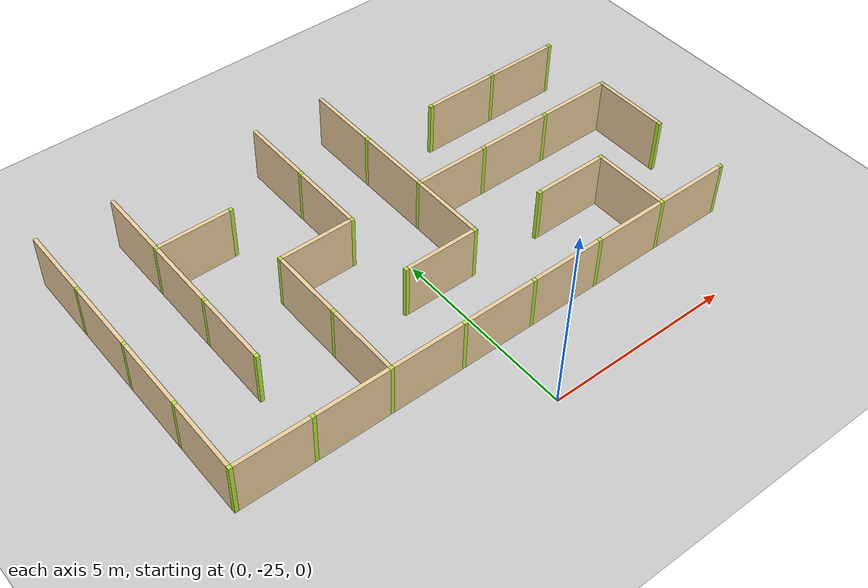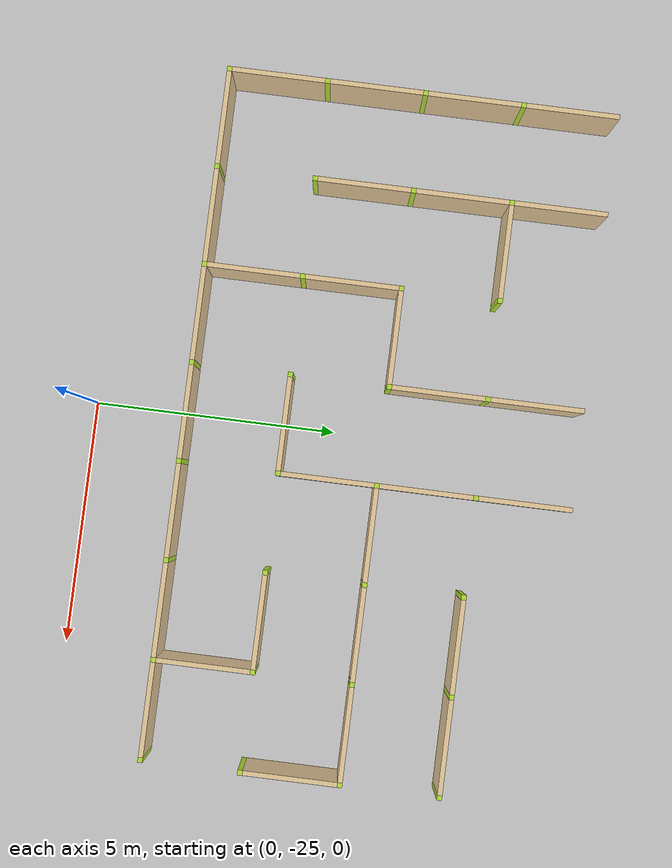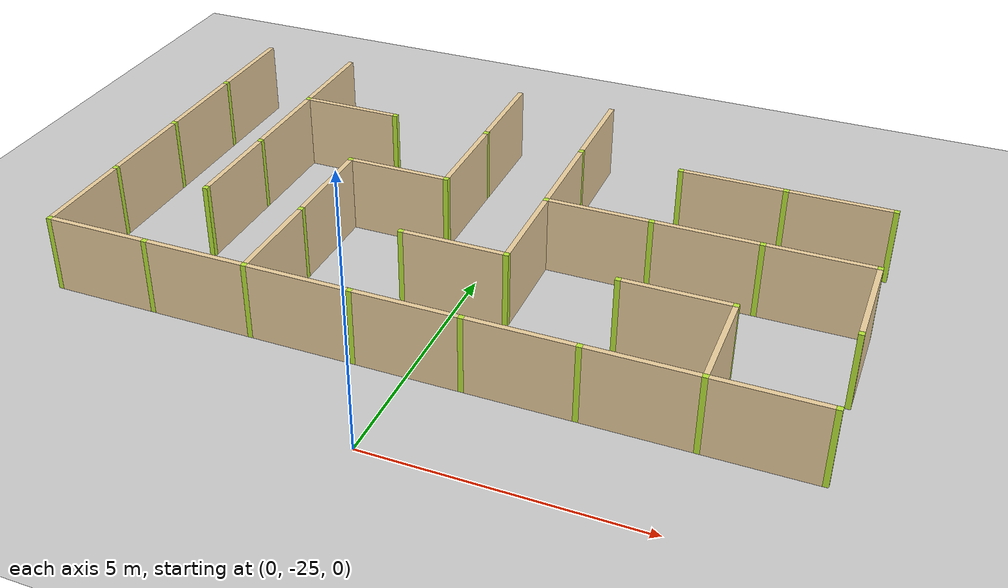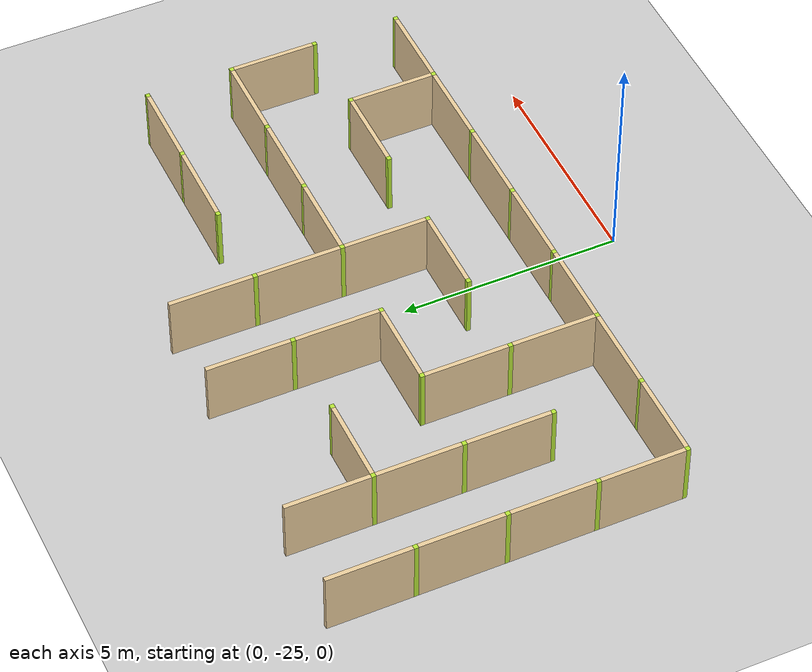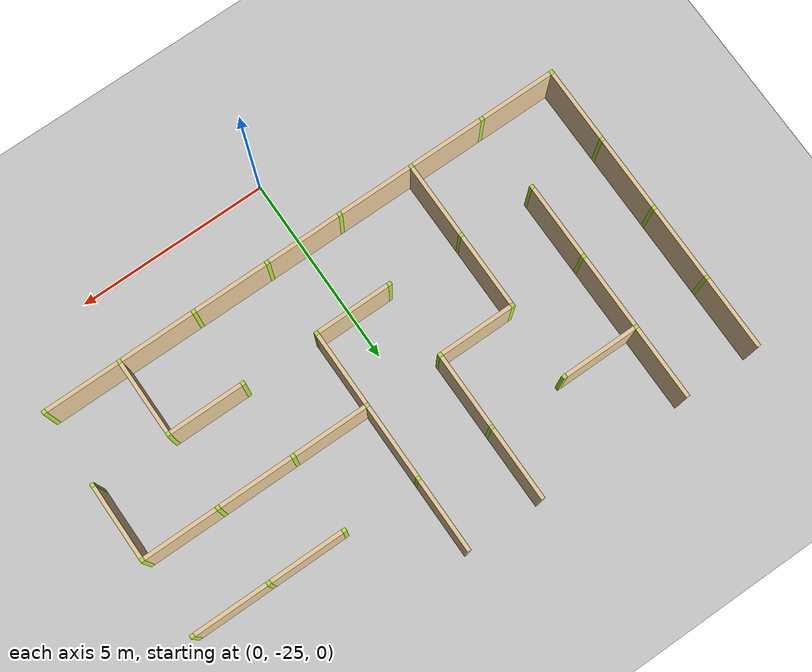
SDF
<sdf version="1.4">
 <world name="maze_world">
  <model name="ground">
   <static>true</static>
   <link name="ground_link">
    <collision name="collision1"><geometry><plane><normal>0 0 1</normal></plane></geometry></collision>
    <visual name="visual1"><geometry><plane><normal>0 0 1</normal><size>100 100</size></plane></geometry></visual>
   </link>
  </model>
  <model name="Untitled">
   <link name="Wall_0_11_v">
    <collision name="Wall_0_Collision">
     <geometry><box><size>1.9 0.1 1.5</size></box></geometry>
     <pose>0 0 0.75 0 -0 0</pose>
    </collision>
    <visual name="Wall_0_Visual">
     <pose>0 0 0.75 0 -0 0</pose>
     <geometry><box><size>1.9 0.1 1.5</size></box></geometry>
     <material>
      <script><uri>file://media/materials/scripts/gazebo.material</uri><name>Gazebo/Grey</name></script>
      <ambient>0.921569 0.807843 0.615686 1</ambient>
     </material>
     <meta><layer>0</layer></meta>
    </visual>
    <pose>-7 -16.0 0 0 -0 1.5708</pose>
    <sensor name="my_contact" type="contact">
     <contact><collision>box_collision</collision><topic>/rover_collision</topic></contact>
    </sensor>
   </link>
   <link name="Wall_1_11_v">
    <collision name="Wall_0_Collision">
     <geometry><box><size>1.9 0.1 1.5</size></box></geometry>
     <pose>0 0 0.75 0 -0 0</pose>
    </collision>
    <visual name="Wall_0_Visual">
     <pose>0 0 0.75 0 -0 0</pose>
     <geometry><box><size>1.9 0.1 1.5</size></box></geometry>
     <material>
      <script><uri>file://media/materials/scripts/gazebo.material</uri><name>Gazebo/Grey</name></script>
      <ambient>0.921569 0.807843 0.615686 1</ambient>
     </material>
     <meta><layer>0</layer></meta>
    </visual>
    <pose>-5 -16.0 0 0 -0 1.5708</pose>
    <sensor name="my_contact" type="contact">
     <contact><collision>box_collision</collision><topic>/rover_collision</topic></contact>
    </sensor>
   </link>
   <link name="Wall_3_11_v">
    <collision name="Wall_0_Collision">
     <geometry><box><size>1.9 0.1 1.5</size></box></geometry>
     <pose>0 0 0.75 0 -0 0</pose>
    </collision>
    <visual name="Wall_0_Visual">
     <pose>0 0 0.75 0 -0 0</pose>
     <geometry><box><size>1.9 0.1 1.5</size></box></geometry>
     <material>
      <script><uri>file://media/materials/scripts/gazebo.material</uri><name>Gazebo/Grey</name></script>
      <ambient>0.921569 0.807843 0.615686 1</ambient>
     </material>
     <meta><layer>0</layer></meta>
    </visual>
    <pose>-1 -16.0 0 0 -0 1.5708</pose>
    <sensor name="my_contact" type="contact">
     <contact><collision>box_collision</collision><topic>/rover_collision</topic></contact>
    </sensor>
   </link>
   <link name="Wall_4_11_v">
    <collision name="Wall_0_Collision">
     <geometry><box><size>1.9 0.1 1.5</size></box></geometry>
     <pose>0 0 0.75 0 -0 0</pose>
    </collision>
    <visual name="Wall_0_Visual">
     <pose>0 0 0.75 0 -0 0</pose>
     <geometry><box><size>1.9 0.1 1.5</size></box></geometry>
     <material>
      <script><uri>file://media/materials/scripts/gazebo.material</uri><name>Gazebo/Grey</name></script>
      <ambient>0.921569 0.807843 0.615686 1</ambient>
     </material>
     <meta><layer>0</layer></meta>
    </visual>
    <pose>1 -16.0 0 0 -0 1.5708</pose>
    <sensor name="my_contact" type="contact">
     <contact><collision>box_collision</collision><topic>/rover_collision</topic></contact>
    </sensor>
   </link>
   <link name="Wall_0_12_v">
    <collision name="Wall_0_Collision">
     <geometry><box><size>1.9 0.1 1.5</size></box></geometry>
     <pose>0 0 0.75 0 -0 0</pose>
    </collision>
    <visual name="Wall_0_Visual">
     <pose>0 0 0.75 0 -0 0</pose>
     <geometry><box><size>1.9 0.1 1.5</size></box></geometry>
     <material>
      <script><uri>file://media/materials/scripts/gazebo.material</uri><name>Gazebo/Grey</name></script>
      <ambient>0.921569 0.807843 0.615686 1</ambient>
     </material>
     <meta><layer>0</layer></meta>
    </visual>
    <pose>-7 -18.0 0 0 -0 1.5708</pose>
    <sensor name="my_contact" type="contact">
     <contact><collision>box_collision</collision><topic>/rover_collision</topic></contact>
    </sensor>
   </link>
   <link name="Joint_-7_-17">
    <collision name="Wall_2_Collision">
     <geometry><box><size>0.1 0.1 1.5</size></box></geometry>
     <pose>0 0 0.75 0 -0 0</pose>
    </collision>
    <visual name="Wall_2_Visual">
     <pose>0 0 0.75 0 -0 0</pose>
     <geometry><box><size>0.1 0.1 1.5</size></box></geometry>
     <material>
      <script><uri>file://media/materials/scripts/gazebo.material</uri><name>Gazebo/Grey</name></script>
      <ambient>0.721569 0.907843 0.215686 1</ambient>
     </material>
     <meta><layer>0</layer></meta>
    </visual>
    <pose>-7 -17 0 0 -0 0</pose>
    <sensor name="my_contact" type="contact">
     <contact><collision>box_collision</collision><topic>/rover_collision</topic></contact>
    </sensor>
   </link>
   <link name="Wall_1_12_h">
    <collision name="Wall_0_Collision">
     <geometry><box><size>1.9 0.1 1.5</size></box></geometry>
     <pose>0 0 0.75 0 -0 0</pose>
    </collision>
    <visual name="Wall_0_Visual">
     <pose>0 0 0.75 0 -0 0</pose>
     <geometry><box><size>1.9 0.1 1.5</size></box></geometry>
     <material>
      <script><uri>file://media/materials/scripts/gazebo.material</uri><name>Gazebo/Grey</name></script>
      <ambient>0.921569 0.807843 0.615686 1</ambient>
     </material>
     <meta><layer>0</layer></meta>
    </visual>
    <pose>-4.0 -17 0 0 -0 0</pose>
    <sensor name="my_contact" type="contact">
     <contact><collision>box_collision</collision><topic>/rover_collision</topic></contact>
    </sensor>
   </link>
   <link name="Wall_1_12_v">
    <collision name="Wall_0_Collision">
     <geometry><box><size>1.9 0.1 1.5</size></box></geometry>
     <pose>0 0 0.75 0 -0 0</pose>
    </collision>
    <visual name="Wall_0_Visual">
     <pose>0 0 0.75 0 -0 0</pose>
     <geometry><box><size>1.9 0.1 1.5</size></box></geometry>
     <material>
      <script><uri>file://media/materials/scripts/gazebo.material</uri><name>Gazebo/Grey</name></script>
      <ambient>0.921569 0.807843 0.615686 1</ambient>
     </material>
     <meta><layer>0</layer></meta>
    </visual>
    <pose>-5 -18.0 0 0 -0 1.5708</pose>
    <sensor name="my_contact" type="contact">
     <contact><collision>box_collision</collision><topic>/rover_collision</topic></contact>
    </sensor>
   </link>
   <link name="Joint_-5_-17">
    <collision name="Wall_2_Collision">
     <geometry><box><size>0.1 0.1 1.5</size></box></geometry>
     <pose>0 0 0.75 0 -0 0</pose>
    </collision>
    <visual name="Wall_2_Visual">
     <pose>0 0 0.75 0 -0 0</pose>
     <geometry><box><size>0.1 0.1 1.5</size></box></geometry>
     <material>
      <script><uri>file://media/materials/scripts/gazebo.material</uri><name>Gazebo/Grey</name></script>
      <ambient>0.721569 0.907843 0.215686 1</ambient>
     </material>
     <meta><layer>0</layer></meta>
    </visual>
    <pose>-5 -17 0 0 -0 0</pose>
    <sensor name="my_contact" type="contact">
     <contact><collision>box_collision</collision><topic>/rover_collision</topic></contact>
    </sensor>
   </link>
   <link name="Joint_-3_-17">
    <collision name="Wall_2_Collision">
     <geometry><box><size>0.1 0.1 1.5</size></box></geometry>
     <pose>0 0 0.75 0 -0 0</pose>
    </collision>
    <visual name="Wall_2_Visual">
     <pose>0 0 0.75 0 -0 0</pose>
     <geometry><box><size>0.1 0.1 1.5</size></box></geometry>
     <material>
      <script><uri>file://media/materials/scripts/gazebo.material</uri><name>Gazebo/Grey</name></script>
      <ambient>0.721569 0.907843 0.215686 1</ambient>
     </material>
     <meta><layer>0</layer></meta>
    </visual>
    <pose>-3 -17 0 0 -0 0</pose>
    <sensor name="my_contact" type="contact">
     <contact><collision>box_collision</collision><topic>/rover_collision</topic></contact>
    </sensor>
   </link>
   <link name="Wall_3_12_v">
    <collision name="Wall_0_Collision">
     <geometry><box><size>1.9 0.1 1.5</size></box></geometry>
     <pose>0 0 0.75 0 -0 0</pose>
    </collision>
    <visual name="Wall_0_Visual">
     <pose>0 0 0.75 0 -0 0</pose>
     <geometry><box><size>1.9 0.1 1.5</size></box></geometry>
     <material>
      <script><uri>file://media/materials/scripts/gazebo.material</uri><name>Gazebo/Grey</name></script>
      <ambient>0.921569 0.807843 0.615686 1</ambient>
     </material>
     <meta><layer>0</layer></meta>
    </visual>
    <pose>-1 -18.0 0 0 -0 1.5708</pose>
    <sensor name="my_contact" type="contact">
     <contact><collision>box_collision</collision><topic>/rover_collision</topic></contact>
    </sensor>
   </link>
   <link name="Joint_-1_-17">
    <collision name="Wall_2_Collision">
     <geometry><box><size>0.1 0.1 1.5</size></box></geometry>
     <pose>0 0 0.75 0 -0 0</pose>
    </collision>
    <visual name="Wall_2_Visual">
     <pose>0 0 0.75 0 -0 0</pose>
     <geometry><box><size>0.1 0.1 1.5</size></box></geometry>
     <material>
      <script><uri>file://media/materials/scripts/gazebo.material</uri><name>Gazebo/Grey</name></script>
      <ambient>0.721569 0.907843 0.215686 1</ambient>
     </material>
     <meta><layer>0</layer></meta>
    </visual>
    <pose>-1 -17 0 0 -0 0</pose>
    <sensor name="my_contact" type="contact">
     <contact><collision>box_collision</collision><topic>/rover_collision</topic></contact>
    </sensor>
   </link>
   <link name="Wall_4_12_v">
    <collision name="Wall_0_Collision">
     <geometry><box><size>1.9 0.1 1.5</size></box></geometry>
     <pose>0 0 0.75 0 -0 0</pose>
    </collision>
    <visual name="Wall_0_Visual">
     <pose>0 0 0.75 0 -0 0</pose>
     <geometry><box><size>1.9 0.1 1.5</size></box></geometry>
     <material>
      <script><uri>file://media/materials/scripts/gazebo.material</uri><name>Gazebo/Grey</name></script>
      <ambient>0.921569 0.807843 0.615686 1</ambient>
     </material>
     <meta><layer>0</layer></meta>
    </visual>
    <pose>1 -18.0 0 0 -0 1.5708</pose>
    <sensor name="my_contact" type="contact">
     <contact><collision>box_collision</collision><topic>/rover_collision</topic></contact>
    </sensor>
   </link>
   <link name="Joint_1_-17">
    <collision name="Wall_2_Collision">
     <geometry><box><size>0.1 0.1 1.5</size></box></geometry>
     <pose>0 0 0.75 0 -0 0</pose>
    </collision>
    <visual name="Wall_2_Visual">
     <pose>0 0 0.75 0 -0 0</pose>
     <geometry><box><size>0.1 0.1 1.5</size></box></geometry>
     <material>
      <script><uri>file://media/materials/scripts/gazebo.material</uri><name>Gazebo/Grey</name></script>
      <ambient>0.721569 0.907843 0.215686 1</ambient>
     </material>
     <meta><layer>0</layer></meta>
    </visual>
    <pose>1 -17 0 0 -0 0</pose>
    <sensor name="my_contact" type="contact">
     <contact><collision>box_collision</collision><topic>/rover_collision</topic></contact>
    </sensor>
   </link>
   <link name="Wall_5_12_h">
    <collision name="Wall_0_Collision">
     <geometry><box><size>1.9 0.1 1.5</size></box></geometry>
     <pose>0 0 0.75 0 -0 0</pose>
    </collision>
    <visual name="Wall_0_Visual">
     <pose>0 0 0.75 0 -0 0</pose>
     <geometry><box><size>1.9 0.1 1.5</size></box></geometry>
     <material>
      <script><uri>file://media/materials/scripts/gazebo.material</uri><name>Gazebo/Grey</name></script>
      <ambient>0.921569 0.807843 0.615686 1</ambient>
     </material>
     <meta><layer>0</layer></meta>
    </visual>
    <pose>4.0 -17 0 0 -0 0</pose>
    <sensor name="my_contact" type="contact">
     <contact><collision>box_collision</collision><topic>/rover_collision</topic></contact>
    </sensor>
   </link>
   <link name="Joint_3_-17">
    <collision name="Wall_2_Collision">
     <geometry><box><size>0.1 0.1 1.5</size></box></geometry>
     <pose>0 0 0.75 0 -0 0</pose>
    </collision>
    <visual name="Wall_2_Visual">
     <pose>0 0 0.75 0 -0 0</pose>
     <geometry><box><size>0.1 0.1 1.5</size></box></geometry>
     <material>
      <script><uri>file://media/materials/scripts/gazebo.material</uri><name>Gazebo/Grey</name></script>
      <ambient>0.721569 0.907843 0.215686 1</ambient>
     </material>
     <meta><layer>0</layer></meta>
    </visual>
    <pose>3 -17 0 0 -0 0</pose>
    <sensor name="my_contact" type="contact">
     <contact><collision>box_collision</collision><topic>/rover_collision</topic></contact>
    </sensor>
   </link>
   <link name="Wall_6_12_h">
    <collision name="Wall_0_Collision">
     <geometry><box><size>1.9 0.1 1.5</size></box></geometry>
     <pose>0 0 0.75 0 -0 0</pose>
    </collision>
    <visual name="Wall_0_Visual">
     <pose>0 0 0.75 0 -0 0</pose>
     <geometry><box><size>1.9 0.1 1.5</size></box></geometry>
     <material>
      <script><uri>file://media/materials/scripts/gazebo.material</uri><name>Gazebo/Grey</name></script>
      <ambient>0.921569 0.807843 0.615686 1</ambient>
     </material>
     <meta><layer>0</layer></meta>
    </visual>
    <pose>6.0 -17 0 0 -0 0</pose>
    <sensor name="my_contact" type="contact">
     <contact><collision>box_collision</collision><topic>/rover_collision</topic></contact>
    </sensor>
   </link>
   <link name="Joint_5_-17">
    <collision name="Wall_2_Collision">
     <geometry><box><size>0.1 0.1 1.5</size></box></geometry>
     <pose>0 0 0.75 0 -0 0</pose>
    </collision>
    <visual name="Wall_2_Visual">
     <pose>0 0 0.75 0 -0 0</pose>
     <geometry><box><size>0.1 0.1 1.5</size></box></geometry>
     <material>
      <script><uri>file://media/materials/scripts/gazebo.material</uri><name>Gazebo/Grey</name></script>
      <ambient>0.721569 0.907843 0.215686 1</ambient>
     </material>
     <meta><layer>0</layer></meta>
    </visual>
    <pose>5 -17 0 0 -0 0</pose>
    <sensor name="my_contact" type="contact">
     <contact><collision>box_collision</collision><topic>/rover_collision</topic></contact>
    </sensor>
   </link>
   <link name="Joint_7_-17">
    <collision name="Wall_2_Collision">
     <geometry><box><size>0.1 0.1 1.5</size></box></geometry>
     <pose>0 0 0.75 0 -0 0</pose>
    </collision>
    <visual name="Wall_2_Visual">
     <pose>0 0 0.75 0 -0 0</pose>
     <geometry><box><size>0.1 0.1 1.5</size></box></geometry>
     <material>
      <script><uri>file://media/materials/scripts/gazebo.material</uri><name>Gazebo/Grey</name></script>
      <ambient>0.721569 0.907843 0.215686 1</ambient>
     </material>
     <meta><layer>0</layer></meta>
    </visual>
    <pose>7 -17 0 0 -0 0</pose>
    <sensor name="my_contact" type="contact">
     <contact><collision>box_collision</collision><topic>/rover_collision</topic></contact>
    </sensor>
   </link>
   <link name="Wall_0_13_v">
    <collision name="Wall_0_Collision">
     <geometry><box><size>1.9 0.1 1.5</size></box></geometry>
     <pose>0 0 0.75 0 -0 0</pose>
    </collision>
    <visual name="Wall_0_Visual">
     <pose>0 0 0.75 0 -0 0</pose>
     <geometry><box><size>1.9 0.1 1.5</size></box></geometry>
     <material>
      <script><uri>file://media/materials/scripts/gazebo.material</uri><name>Gazebo/Grey</name></script>
      <ambient>0.921569 0.807843 0.615686 1</ambient>
     </material>
     <meta><layer>0</layer></meta>
    </visual>
    <pose>-7 -20.0 0 0 -0 1.5708</pose>
    <sensor name="my_contact" type="contact">
     <contact><collision>box_collision</collision><topic>/rover_collision</topic></contact>
    </sensor>
   </link>
   <link name="Joint_-7_-19">
    <collision name="Wall_2_Collision">
     <geometry><box><size>0.1 0.1 1.5</size></box></geometry>
     <pose>0 0 0.75 0 -0 0</pose>
    </collision>
    <visual name="Wall_2_Visual">
     <pose>0 0 0.75 0 -0 0</pose>
     <geometry><box><size>0.1 0.1 1.5</size></box></geometry>
     <material>
      <script><uri>file://media/materials/scripts/gazebo.material</uri><name>Gazebo/Grey</name></script>
      <ambient>0.721569 0.907843 0.215686 1</ambient>
     </material>
     <meta><layer>0</layer></meta>
    </visual>
    <pose>-7 -19 0 0 -0 0</pose>
    <sensor name="my_contact" type="contact">
     <contact><collision>box_collision</collision><topic>/rover_collision</topic></contact>
    </sensor>
   </link>
   <link name="Wall_1_13_v">
    <collision name="Wall_0_Collision">
     <geometry><box><size>1.9 0.1 1.5</size></box></geometry>
     <pose>0 0 0.75 0 -0 0</pose>
    </collision>
    <visual name="Wall_0_Visual">
     <pose>0 0 0.75 0 -0 0</pose>
     <geometry><box><size>1.9 0.1 1.5</size></box></geometry>
     <material>
      <script><uri>file://media/materials/scripts/gazebo.material</uri><name>Gazebo/Grey</name></script>
      <ambient>0.921569 0.807843 0.615686 1</ambient>
     </material>
     <meta><layer>0</layer></meta>
    </visual>
    <pose>-5 -20.0 0 0 -0 1.5708</pose>
    <sensor name="my_contact" type="contact">
     <contact><collision>box_collision</collision><topic>/rover_collision</topic></contact>
    </sensor>
   </link>
   <link name="Joint_-5_-19">
    <collision name="Wall_2_Collision">
     <geometry><box><size>0.1 0.1 1.5</size></box></geometry>
     <pose>0 0 0.75 0 -0 0</pose>
    </collision>
    <visual name="Wall_2_Visual">
     <pose>0 0 0.75 0 -0 0</pose>
     <geometry><box><size>0.1 0.1 1.5</size></box></geometry>
     <material>
      <script><uri>file://media/materials/scripts/gazebo.material</uri><name>Gazebo/Grey</name></script>
      <ambient>0.721569 0.907843 0.215686 1</ambient>
     </material>
     <meta><layer>0</layer></meta>
    </visual>
    <pose>-5 -19 0 0 -0 0</pose>
    <sensor name="my_contact" type="contact">
     <contact><collision>box_collision</collision><topic>/rover_collision</topic></contact>
    </sensor>
   </link>
   <link name="Wall_2_13_h">
    <collision name="Wall_0_Collision">
     <geometry><box><size>1.9 0.1 1.5</size></box></geometry>
     <pose>0 0 0.75 0 -0 0</pose>
    </collision>
    <visual name="Wall_0_Visual">
     <pose>0 0 0.75 0 -0 0</pose>
     <geometry><box><size>1.9 0.1 1.5</size></box></geometry>
     <material>
      <script><uri>file://media/materials/scripts/gazebo.material</uri><name>Gazebo/Grey</name></script>
      <ambient>0.921569 0.807843 0.615686 1</ambient>
     </material>
     <meta><layer>0</layer></meta>
    </visual>
    <pose>-2.0 -19 0 0 -0 0</pose>
    <sensor name="my_contact" type="contact">
     <contact><collision>box_collision</collision><topic>/rover_collision</topic></contact>
    </sensor>
   </link>
   <link name="Wall_2_13_v">
    <collision name="Wall_0_Collision">
     <geometry><box><size>1.9 0.1 1.5</size></box></geometry>
     <pose>0 0 0.75 0 -0 0</pose>
    </collision>
    <visual name="Wall_0_Visual">
     <pose>0 0 0.75 0 -0 0</pose>
     <geometry><box><size>1.9 0.1 1.5</size></box></geometry>
     <material>
      <script><uri>file://media/materials/scripts/gazebo.material</uri><name>Gazebo/Grey</name></script>
      <ambient>0.921569 0.807843 0.615686 1</ambient>
     </material>
     <meta><layer>0</layer></meta>
    </visual>
    <pose>-3 -20.0 0 0 -0 1.5708</pose>
    <sensor name="my_contact" type="contact">
     <contact><collision>box_collision</collision><topic>/rover_collision</topic></contact>
    </sensor>
   </link>
   <link name="Joint_-3_-19">
    <collision name="Wall_2_Collision">
     <geometry><box><size>0.1 0.1 1.5</size></box></geometry>
     <pose>0 0 0.75 0 -0 0</pose>
    </collision>
    <visual name="Wall_2_Visual">
     <pose>0 0 0.75 0 -0 0</pose>
     <geometry><box><size>0.1 0.1 1.5</size></box></geometry>
     <material>
      <script><uri>file://media/materials/scripts/gazebo.material</uri><name>Gazebo/Grey</name></script>
      <ambient>0.721569 0.907843 0.215686 1</ambient>
     </material>
     <meta><layer>0</layer></meta>
    </visual>
    <pose>-3 -19 0 0 -0 0</pose>
    <sensor name="my_contact" type="contact">
     <contact><collision>box_collision</collision><topic>/rover_collision</topic></contact>
    </sensor>
   </link>
   <link name="Joint_-1_-19">
    <collision name="Wall_2_Collision">
     <geometry><box><size>0.1 0.1 1.5</size></box></geometry>
     <pose>0 0 0.75 0 -0 0</pose>
    </collision>
    <visual name="Wall_2_Visual">
     <pose>0 0 0.75 0 -0 0</pose>
     <geometry><box><size>0.1 0.1 1.5</size></box></geometry>
     <material>
      <script><uri>file://media/materials/scripts/gazebo.material</uri><name>Gazebo/Grey</name></script>
      <ambient>0.721569 0.907843 0.215686 1</ambient>
     </material>
     <meta><layer>0</layer></meta>
    </visual>
    <pose>-1 -19 0 0 -0 0</pose>
    <sensor name="my_contact" type="contact">
     <contact><collision>box_collision</collision><topic>/rover_collision</topic></contact>
    </sensor>
   </link>
   <link name="Wall_4_13_h">
    <collision name="Wall_0_Collision">
     <geometry><box><size>1.9 0.1 1.5</size></box></geometry>
     <pose>0 0 0.75 0 -0 0</pose>
    </collision>
    <visual name="Wall_0_Visual">
     <pose>0 0 0.75 0 -0 0</pose>
     <geometry><box><size>1.9 0.1 1.5</size></box></geometry>
     <material>
      <script><uri>file://media/materials/scripts/gazebo.material</uri><name>Gazebo/Grey</name></script>
      <ambient>0.921569 0.807843 0.615686 1</ambient>
     </material>
     <meta><layer>0</layer></meta>
    </visual>
    <pose>2.0 -19 0 0 -0 0</pose>
    <sensor name="my_contact" type="contact">
     <contact><collision>box_collision</collision><topic>/rover_collision</topic></contact>
    </sensor>
   </link>
   <link name="Wall_4_13_v">
    <collision name="Wall_0_Collision">
     <geometry><box><size>1.9 0.1 1.5</size></box></geometry>
     <pose>0 0 0.75 0 -0 0</pose>
    </collision>
    <visual name="Wall_0_Visual">
     <pose>0 0 0.75 0 -0 0</pose>
     <geometry><box><size>1.9 0.1 1.5</size></box></geometry>
     <material>
      <script><uri>file://media/materials/scripts/gazebo.material</uri><name>Gazebo/Grey</name></script>
      <ambient>0.921569 0.807843 0.615686 1</ambient>
     </material>
     <meta><layer>0</layer></meta>
    </visual>
    <pose>1 -20.0 0 0 -0 1.5708</pose>
    <sensor name="my_contact" type="contact">
     <contact><collision>box_collision</collision><topic>/rover_collision</topic></contact>
    </sensor>
   </link>
   <link name="Joint_1_-19">
    <collision name="Wall_2_Collision">
     <geometry><box><size>0.1 0.1 1.5</size></box></geometry>
     <pose>0 0 0.75 0 -0 0</pose>
    </collision>
    <visual name="Wall_2_Visual">
     <pose>0 0 0.75 0 -0 0</pose>
     <geometry><box><size>0.1 0.1 1.5</size></box></geometry>
     <material>
      <script><uri>file://media/materials/scripts/gazebo.material</uri><name>Gazebo/Grey</name></script>
      <ambient>0.721569 0.907843 0.215686 1</ambient>
     </material>
     <meta><layer>0</layer></meta>
    </visual>
    <pose>1 -19 0 0 -0 0</pose>
    <sensor name="my_contact" type="contact">
     <contact><collision>box_collision</collision><topic>/rover_collision</topic></contact>
    </sensor>
   </link>
   <link name="Wall_5_13_h">
    <collision name="Wall_0_Collision">
     <geometry><box><size>1.9 0.1 1.5</size></box></geometry>
     <pose>0 0 0.75 0 -0 0</pose>
    </collision>
    <visual name="Wall_0_Visual">
     <pose>0 0 0.75 0 -0 0</pose>
     <geometry><box><size>1.9 0.1 1.5</size></box></geometry>
     <material>
      <script><uri>file://media/materials/scripts/gazebo.material</uri><name>Gazebo/Grey</name></script>
      <ambient>0.921569 0.807843 0.615686 1</ambient>
     </material>
     <meta><layer>0</layer></meta>
    </visual>
    <pose>4.0 -19 0 0 -0 0</pose>
    <sensor name="my_contact" type="contact">
     <contact><collision>box_collision</collision><topic>/rover_collision</topic></contact>
    </sensor>
   </link>
   <link name="Joint_3_-19">
    <collision name="Wall_2_Collision">
     <geometry><box><size>0.1 0.1 1.5</size></box></geometry>
     <pose>0 0 0.75 0 -0 0</pose>
    </collision>
    <visual name="Wall_2_Visual">
     <pose>0 0 0.75 0 -0 0</pose>
     <geometry><box><size>0.1 0.1 1.5</size></box></geometry>
     <material>
      <script><uri>file://media/materials/scripts/gazebo.material</uri><name>Gazebo/Grey</name></script>
      <ambient>0.721569 0.907843 0.215686 1</ambient>
     </material>
     <meta><layer>0</layer></meta>
    </visual>
    <pose>3 -19 0 0 -0 0</pose>
    <sensor name="my_contact" type="contact">
     <contact><collision>box_collision</collision><topic>/rover_collision</topic></contact>
    </sensor>
   </link>
   <link name="Wall_6_13_h">
    <collision name="Wall_0_Collision">
     <geometry><box><size>1.9 0.1 1.5</size></box></geometry>
     <pose>0 0 0.75 0 -0 0</pose>
    </collision>
    <visual name="Wall_0_Visual">
     <pose>0 0 0.75 0 -0 0</pose>
     <geometry><box><size>1.9 0.1 1.5</size></box></geometry>
     <material>
      <script><uri>file://media/materials/scripts/gazebo.material</uri><name>Gazebo/Grey</name></script>
      <ambient>0.921569 0.807843 0.615686 1</ambient>
     </material>
     <meta><layer>0</layer></meta>
    </visual>
    <pose>6.0 -19 0 0 -0 0</pose>
    <sensor name="my_contact" type="contact">
     <contact><collision>box_collision</collision><topic>/rover_collision</topic></contact>
    </sensor>
   </link>
   <link name="Joint_5_-19">
    <collision name="Wall_2_Collision">
     <geometry><box><size>0.1 0.1 1.5</size></box></geometry>
     <pose>0 0 0.75 0 -0 0</pose>
    </collision>
    <visual name="Wall_2_Visual">
     <pose>0 0 0.75 0 -0 0</pose>
     <geometry><box><size>0.1 0.1 1.5</size></box></geometry>
     <material>
      <script><uri>file://media/materials/scripts/gazebo.material</uri><name>Gazebo/Grey</name></script>
      <ambient>0.721569 0.907843 0.215686 1</ambient>
     </material>
     <meta><layer>0</layer></meta>
    </visual>
    <pose>5 -19 0 0 -0 0</pose>
    <sensor name="my_contact" type="contact">
     <contact><collision>box_collision</collision><topic>/rover_collision</topic></contact>
    </sensor>
   </link>
   <link name="Wall_7_13_v">
    <collision name="Wall_0_Collision">
     <geometry><box><size>1.9 0.1 1.5</size></box></geometry>
     <pose>0 0 0.75 0 -0 0</pose>
    </collision>
    <visual name="Wall_0_Visual">
     <pose>0 0 0.75 0 -0 0</pose>
     <geometry><box><size>1.9 0.1 1.5</size></box></geometry>
     <material>
      <script><uri>file://media/materials/scripts/gazebo.material</uri><name>Gazebo/Grey</name></script>
      <ambient>0.921569 0.807843 0.615686 1</ambient>
     </material>
     <meta><layer>0</layer></meta>
    </visual>
    <pose>7 -20.0 0 0 -0 1.5708</pose>
    <sensor name="my_contact" type="contact">
     <contact><collision>box_collision</collision><topic>/rover_collision</topic></contact>
    </sensor>
   </link>
   <link name="Joint_7_-19">
    <collision name="Wall_2_Collision">
     <geometry><box><size>0.1 0.1 1.5</size></box></geometry>
     <pose>0 0 0.75 0 -0 0</pose>
    </collision>
    <visual name="Wall_2_Visual">
     <pose>0 0 0.75 0 -0 0</pose>
     <geometry><box><size>0.1 0.1 1.5</size></box></geometry>
     <material>
      <script><uri>file://media/materials/scripts/gazebo.material</uri><name>Gazebo/Grey</name></script>
      <ambient>0.721569 0.907843 0.215686 1</ambient>
     </material>
     <meta><layer>0</layer></meta>
    </visual>
    <pose>7 -19 0 0 -0 0</pose>
    <sensor name="my_contact" type="contact">
     <contact><collision>box_collision</collision><topic>/rover_collision</topic></contact>
    </sensor>
   </link>
   <link name="Wall_0_14_v">
    <collision name="Wall_0_Collision">
     <geometry><box><size>1.9 0.1 1.5</size></box></geometry>
     <pose>0 0 0.75 0 -0 0</pose>
    </collision>
    <visual name="Wall_0_Visual">
     <pose>0 0 0.75 0 -0 0</pose>
     <geometry><box><size>1.9 0.1 1.5</size></box></geometry>
     <material>
      <script><uri>file://media/materials/scripts/gazebo.material</uri><name>Gazebo/Grey</name></script>
      <ambient>0.921569 0.807843 0.615686 1</ambient>
     </material>
     <meta><layer>0</layer></meta>
    </visual>
    <pose>-7 -22.0 0 0 -0 1.5708</pose>
    <sensor name="my_contact" type="contact">
     <contact><collision>box_collision</collision><topic>/rover_collision</topic></contact>
    </sensor>
   </link>
   <link name="Joint_-7_-21">
    <collision name="Wall_2_Collision">
     <geometry><box><size>0.1 0.1 1.5</size></box></geometry>
     <pose>0 0 0.75 0 -0 0</pose>
    </collision>
    <visual name="Wall_2_Visual">
     <pose>0 0 0.75 0 -0 0</pose>
     <geometry><box><size>0.1 0.1 1.5</size></box></geometry>
     <material>
      <script><uri>file://media/materials/scripts/gazebo.material</uri><name>Gazebo/Grey</name></script>
      <ambient>0.721569 0.907843 0.215686 1</ambient>
     </material>
     <meta><layer>0</layer></meta>
    </visual>
    <pose>-7 -21 0 0 -0 0</pose>
    <sensor name="my_contact" type="contact">
     <contact><collision>box_collision</collision><topic>/rover_collision</topic></contact>
    </sensor>
   </link>
   <link name="Wall_0_15_h">
    <collision name="Wall_0_Collision">
     <geometry><box><size>1.9 0.1 1.5</size></box></geometry>
     <pose>0 0 0.75 0 -0 0</pose>
    </collision>
    <visual name="Wall_0_Visual">
     <pose>0 0 0.75 0 -0 0</pose>
     <geometry><box><size>1.9 0.1 1.5</size></box></geometry>
     <material>
      <script><uri>file://media/materials/scripts/gazebo.material</uri><name>Gazebo/Grey</name></script>
      <ambient>0.921569 0.807843 0.615686 1</ambient>
     </material>
     <meta><layer>0</layer></meta>
    </visual>
    <pose>-6.0 -23 0 0 -0 0</pose>
    <sensor name="my_contact" type="contact">
     <contact><collision>box_collision</collision><topic>/rover_collision</topic></contact>
    </sensor>
   </link>
   <link name="Joint_-7_-23">
    <collision name="Wall_2_Collision">
     <geometry><box><size>0.1 0.1 1.5</size></box></geometry>
     <pose>0 0 0.75 0 -0 0</pose>
    </collision>
    <visual name="Wall_2_Visual">
     <pose>0 0 0.75 0 -0 0</pose>
     <geometry><box><size>0.1 0.1 1.5</size></box></geometry>
     <material>
      <script><uri>file://media/materials/scripts/gazebo.material</uri><name>Gazebo/Grey</name></script>
      <ambient>0.721569 0.907843 0.215686 1</ambient>
     </material>
     <meta><layer>0</layer></meta>
    </visual>
    <pose>-7 -23 0 0 -0 0</pose>
    <sensor name="my_contact" type="contact">
     <contact><collision>box_collision</collision><topic>/rover_collision</topic></contact>
    </sensor>
   </link>
   <link name="Joint_-5_-21">
    <collision name="Wall_2_Collision">
     <geometry><box><size>0.1 0.1 1.5</size></box></geometry>
     <pose>0 0 0.75 0 -0 0</pose>
    </collision>
    <visual name="Wall_2_Visual">
     <pose>0 0 0.75 0 -0 0</pose>
     <geometry><box><size>0.1 0.1 1.5</size></box></geometry>
     <material>
      <script><uri>file://media/materials/scripts/gazebo.material</uri><name>Gazebo/Grey</name></script>
      <ambient>0.721569 0.907843 0.215686 1</ambient>
     </material>
     <meta><layer>0</layer></meta>
    </visual>
    <pose>-5 -21 0 0 -0 0</pose>
    <sensor name="my_contact" type="contact">
     <contact><collision>box_collision</collision><topic>/rover_collision</topic></contact>
    </sensor>
   </link>
   <link name="Wall_1_15_h">
    <collision name="Wall_0_Collision">
     <geometry><box><size>1.9 0.1 1.5</size></box></geometry>
     <pose>0 0 0.75 0 -0 0</pose>
    </collision>
    <visual name="Wall_0_Visual">
     <pose>0 0 0.75 0 -0 0</pose>
     <geometry><box><size>1.9 0.1 1.5</size></box></geometry>
     <material>
      <script><uri>file://media/materials/scripts/gazebo.material</uri><name>Gazebo/Grey</name></script>
      <ambient>0.921569 0.807843 0.615686 1</ambient>
     </material>
     <meta><layer>0</layer></meta>
    </visual>
    <pose>-4.0 -23 0 0 -0 0</pose>
    <sensor name="my_contact" type="contact">
     <contact><collision>box_collision</collision><topic>/rover_collision</topic></contact>
    </sensor>
   </link>
   <link name="Joint_-5_-23">
    <collision name="Wall_2_Collision">
     <geometry><box><size>0.1 0.1 1.5</size></box></geometry>
     <pose>0 0 0.75 0 -0 0</pose>
    </collision>
    <visual name="Wall_2_Visual">
     <pose>0 0 0.75 0 -0 0</pose>
     <geometry><box><size>0.1 0.1 1.5</size></box></geometry>
     <material>
      <script><uri>file://media/materials/scripts/gazebo.material</uri><name>Gazebo/Grey</name></script>
      <ambient>0.721569 0.907843 0.215686 1</ambient>
     </material>
     <meta><layer>0</layer></meta>
    </visual>
    <pose>-5 -23 0 0 -0 0</pose>
    <sensor name="my_contact" type="contact">
     <contact><collision>box_collision</collision><topic>/rover_collision</topic></contact>
    </sensor>
   </link>
   <link name="Wall_2_14_v">
    <collision name="Wall_0_Collision">
     <geometry><box><size>1.9 0.1 1.5</size></box></geometry>
     <pose>0 0 0.75 0 -0 0</pose>
    </collision>
    <visual name="Wall_0_Visual">
     <pose>0 0 0.75 0 -0 0</pose>
     <geometry><box><size>1.9 0.1 1.5</size></box></geometry>
     <material>
      <script><uri>file://media/materials/scripts/gazebo.material</uri><name>Gazebo/Grey</name></script>
      <ambient>0.921569 0.807843 0.615686 1</ambient>
     </material>
     <meta><layer>0</layer></meta>
    </visual>
    <pose>-3 -22.0 0 0 -0 1.5708</pose>
    <sensor name="my_contact" type="contact">
     <contact><collision>box_collision</collision><topic>/rover_collision</topic></contact>
    </sensor>
   </link>
   <link name="Joint_-3_-21">
    <collision name="Wall_2_Collision">
     <geometry><box><size>0.1 0.1 1.5</size></box></geometry>
     <pose>0 0 0.75 0 -0 0</pose>
    </collision>
    <visual name="Wall_2_Visual">
     <pose>0 0 0.75 0 -0 0</pose>
     <geometry><box><size>0.1 0.1 1.5</size></box></geometry>
     <material>
      <script><uri>file://media/materials/scripts/gazebo.material</uri><name>Gazebo/Grey</name></script>
      <ambient>0.721569 0.907843 0.215686 1</ambient>
     </material>
     <meta><layer>0</layer></meta>
    </visual>
    <pose>-3 -21 0 0 -0 0</pose>
    <sensor name="my_contact" type="contact">
     <contact><collision>box_collision</collision><topic>/rover_collision</topic></contact>
    </sensor>
   </link>
   <link name="Wall_2_15_h">
    <collision name="Wall_0_Collision">
     <geometry><box><size>1.9 0.1 1.5</size></box></geometry>
     <pose>0 0 0.75 0 -0 0</pose>
    </collision>
    <visual name="Wall_0_Visual">
     <pose>0 0 0.75 0 -0 0</pose>
     <geometry><box><size>1.9 0.1 1.5</size></box></geometry>
     <material>
      <script><uri>file://media/materials/scripts/gazebo.material</uri><name>Gazebo/Grey</name></script>
      <ambient>0.921569 0.807843 0.615686 1</ambient>
     </material>
     <meta><layer>0</layer></meta>
    </visual>
    <pose>-2.0 -23 0 0 -0 0</pose>
    <sensor name="my_contact" type="contact">
     <contact><collision>box_collision</collision><topic>/rover_collision</topic></contact>
    </sensor>
   </link>
   <link name="Joint_-3_-23">
    <collision name="Wall_2_Collision">
     <geometry><box><size>0.1 0.1 1.5</size></box></geometry>
     <pose>0 0 0.75 0 -0 0</pose>
    </collision>
    <visual name="Wall_2_Visual">
     <pose>0 0 0.75 0 -0 0</pose>
     <geometry><box><size>0.1 0.1 1.5</size></box></geometry>
     <material>
      <script><uri>file://media/materials/scripts/gazebo.material</uri><name>Gazebo/Grey</name></script>
      <ambient>0.721569 0.907843 0.215686 1</ambient>
     </material>
     <meta><layer>0</layer></meta>
    </visual>
    <pose>-3 -23 0 0 -0 0</pose>
    <sensor name="my_contact" type="contact">
     <contact><collision>box_collision</collision><topic>/rover_collision</topic></contact>
    </sensor>
   </link>
   <link name="Wall_3_14_h">
    <collision name="Wall_0_Collision">
     <geometry><box><size>1.9 0.1 1.5</size></box></geometry>
     <pose>0 0 0.75 0 -0 0</pose>
    </collision>
    <visual name="Wall_0_Visual">
     <pose>0 0 0.75 0 -0 0</pose>
     <geometry><box><size>1.9 0.1 1.5</size></box></geometry>
     <material>
      <script><uri>file://media/materials/scripts/gazebo.material</uri><name>Gazebo/Grey</name></script>
      <ambient>0.921569 0.807843 0.615686 1</ambient>
     </material>
     <meta><layer>0</layer></meta>
    </visual>
    <pose>0.0 -21 0 0 -0 0</pose>
    <sensor name="my_contact" type="contact">
     <contact><collision>box_collision</collision><topic>/rover_collision</topic></contact>
    </sensor>
   </link>
   <link name="Joint_-1_-21">
    <collision name="Wall_2_Collision">
     <geometry><box><size>0.1 0.1 1.5</size></box></geometry>
     <pose>0 0 0.75 0 -0 0</pose>
    </collision>
    <visual name="Wall_2_Visual">
     <pose>0 0 0.75 0 -0 0</pose>
     <geometry><box><size>0.1 0.1 1.5</size></box></geometry>
     <material>
      <script><uri>file://media/materials/scripts/gazebo.material</uri><name>Gazebo/Grey</name></script>
      <ambient>0.721569 0.907843 0.215686 1</ambient>
     </material>
     <meta><layer>0</layer></meta>
    </visual>
    <pose>-1 -21 0 0 -0 0</pose>
    <sensor name="my_contact" type="contact">
     <contact><collision>box_collision</collision><topic>/rover_collision</topic></contact>
    </sensor>
   </link>
   <link name="Wall_3_15_h">
    <collision name="Wall_0_Collision">
     <geometry><box><size>1.9 0.1 1.5</size></box></geometry>
     <pose>0 0 0.75 0 -0 0</pose>
    </collision>
    <visual name="Wall_0_Visual">
     <pose>0 0 0.75 0 -0 0</pose>
     <geometry><box><size>1.9 0.1 1.5</size></box></geometry>
     <material>
      <script><uri>file://media/materials/scripts/gazebo.material</uri><name>Gazebo/Grey</name></script>
      <ambient>0.921569 0.807843 0.615686 1</ambient>
     </material>
     <meta><layer>0</layer></meta>
    </visual>
    <pose>0.0 -23 0 0 -0 0</pose>
    <sensor name="my_contact" type="contact">
     <contact><collision>box_collision</collision><topic>/rover_collision</topic></contact>
    </sensor>
   </link>
   <link name="Joint_-1_-23">
    <collision name="Wall_2_Collision">
     <geometry><box><size>0.1 0.1 1.5</size></box></geometry>
     <pose>0 0 0.75 0 -0 0</pose>
    </collision>
    <visual name="Wall_2_Visual">
     <pose>0 0 0.75 0 -0 0</pose>
     <geometry><box><size>0.1 0.1 1.5</size></box></geometry>
     <material>
      <script><uri>file://media/materials/scripts/gazebo.material</uri><name>Gazebo/Grey</name></script>
      <ambient>0.721569 0.907843 0.215686 1</ambient>
     </material>
     <meta><layer>0</layer></meta>
    </visual>
    <pose>-1 -23 0 0 -0 0</pose>
    <sensor name="my_contact" type="contact">
     <contact><collision>box_collision</collision><topic>/rover_collision</topic></contact>
    </sensor>
   </link>
   <link name="Joint_1_-21">
    <collision name="Wall_2_Collision">
     <geometry><box><size>0.1 0.1 1.5</size></box></geometry>
     <pose>0 0 0.75 0 -0 0</pose>
    </collision>
    <visual name="Wall_2_Visual">
     <pose>0 0 0.75 0 -0 0</pose>
     <geometry><box><size>0.1 0.1 1.5</size></box></geometry>
     <material>
      <script><uri>file://media/materials/scripts/gazebo.material</uri><name>Gazebo/Grey</name></script>
      <ambient>0.721569 0.907843 0.215686 1</ambient>
     </material>
     <meta><layer>0</layer></meta>
    </visual>
    <pose>1 -21 0 0 -0 0</pose>
    <sensor name="my_contact" type="contact">
     <contact><collision>box_collision</collision><topic>/rover_collision</topic></contact>
    </sensor>
   </link>
   <link name="Wall_4_15_h">
    <collision name="Wall_0_Collision">
     <geometry><box><size>1.9 0.1 1.5</size></box></geometry>
     <pose>0 0 0.75 0 -0 0</pose>
    </collision>
    <visual name="Wall_0_Visual">
     <pose>0 0 0.75 0 -0 0</pose>
     <geometry><box><size>1.9 0.1 1.5</size></box></geometry>
     <material>
      <script><uri>file://media/materials/scripts/gazebo.material</uri><name>Gazebo/Grey</name></script>
      <ambient>0.921569 0.807843 0.615686 1</ambient>
     </material>
     <meta><layer>0</layer></meta>
    </visual>
    <pose>2.0 -23 0 0 -0 0</pose>
    <sensor name="my_contact" type="contact">
     <contact><collision>box_collision</collision><topic>/rover_collision</topic></contact>
    </sensor>
   </link>
   <link name="Joint_1_-23">
    <collision name="Wall_2_Collision">
     <geometry><box><size>0.1 0.1 1.5</size></box></geometry>
     <pose>0 0 0.75 0 -0 0</pose>
    </collision>
    <visual name="Wall_2_Visual">
     <pose>0 0 0.75 0 -0 0</pose>
     <geometry><box><size>0.1 0.1 1.5</size></box></geometry>
     <material>
      <script><uri>file://media/materials/scripts/gazebo.material</uri><name>Gazebo/Grey</name></script>
      <ambient>0.721569 0.907843 0.215686 1</ambient>
     </material>
     <meta><layer>0</layer></meta>
    </visual>
    <pose>1 -23 0 0 -0 0</pose>
    <sensor name="my_contact" type="contact">
     <contact><collision>box_collision</collision><topic>/rover_collision</topic></contact>
    </sensor>
   </link>
   <link name="Wall_5_14_h">
    <collision name="Wall_0_Collision">
     <geometry><box><size>1.9 0.1 1.5</size></box></geometry>
     <pose>0 0 0.75 0 -0 0</pose>
    </collision>
    <visual name="Wall_0_Visual">
     <pose>0 0 0.75 0 -0 0</pose>
     <geometry><box><size>1.9 0.1 1.5</size></box></geometry>
     <material>
      <script><uri>file://media/materials/scripts/gazebo.material</uri><name>Gazebo/Grey</name></script>
      <ambient>0.921569 0.807843 0.615686 1</ambient>
     </material>
     <meta><layer>0</layer></meta>
    </visual>
    <pose>4.0 -21 0 0 -0 0</pose>
    <sensor name="my_contact" type="contact">
     <contact><collision>box_collision</collision><topic>/rover_collision</topic></contact>
    </sensor>
   </link>
   <link name="Joint_3_-21">
    <collision name="Wall_2_Collision">
     <geometry><box><size>0.1 0.1 1.5</size></box></geometry>
     <pose>0 0 0.75 0 -0 0</pose>
    </collision>
    <visual name="Wall_2_Visual">
     <pose>0 0 0.75 0 -0 0</pose>
     <geometry><box><size>0.1 0.1 1.5</size></box></geometry>
     <material>
      <script><uri>file://media/materials/scripts/gazebo.material</uri><name>Gazebo/Grey</name></script>
      <ambient>0.721569 0.907843 0.215686 1</ambient>
     </material>
     <meta><layer>0</layer></meta>
    </visual>
    <pose>3 -21 0 0 -0 0</pose>
    <sensor name="my_contact" type="contact">
     <contact><collision>box_collision</collision><topic>/rover_collision</topic></contact>
    </sensor>
   </link>
   <link name="Wall_5_15_h">
    <collision name="Wall_0_Collision">
     <geometry><box><size>1.9 0.1 1.5</size></box></geometry>
     <pose>0 0 0.75 0 -0 0</pose>
    </collision>
    <visual name="Wall_0_Visual">
     <pose>0 0 0.75 0 -0 0</pose>
     <geometry><box><size>1.9 0.1 1.5</size></box></geometry>
     <material>
      <script><uri>file://media/materials/scripts/gazebo.material</uri><name>Gazebo/Grey</name></script>
      <ambient>0.921569 0.807843 0.615686 1</ambient>
     </material>
     <meta><layer>0</layer></meta>
    </visual>
    <pose>4.0 -23 0 0 -0 0</pose>
    <sensor name="my_contact" type="contact">
     <contact><collision>box_collision</collision><topic>/rover_collision</topic></contact>
    </sensor>
   </link>
   <link name="Joint_3_-23">
    <collision name="Wall_2_Collision">
     <geometry><box><size>0.1 0.1 1.5</size></box></geometry>
     <pose>0 0 0.75 0 -0 0</pose>
    </collision>
    <visual name="Wall_2_Visual">
     <pose>0 0 0.75 0 -0 0</pose>
     <geometry><box><size>0.1 0.1 1.5</size></box></geometry>
     <material>
      <script><uri>file://media/materials/scripts/gazebo.material</uri><name>Gazebo/Grey</name></script>
      <ambient>0.721569 0.907843 0.215686 1</ambient>
     </material>
     <meta><layer>0</layer></meta>
    </visual>
    <pose>3 -23 0 0 -0 0</pose>
    <sensor name="my_contact" type="contact">
     <contact><collision>box_collision</collision><topic>/rover_collision</topic></contact>
    </sensor>
   </link>
   <link name="Wall_6_14_v">
    <collision name="Wall_0_Collision">
     <geometry><box><size>1.9 0.1 1.5</size></box></geometry>
     <pose>0 0 0.75 0 -0 0</pose>
    </collision>
    <visual name="Wall_0_Visual">
     <pose>0 0 0.75 0 -0 0</pose>
     <geometry><box><size>1.9 0.1 1.5</size></box></geometry>
     <material>
      <script><uri>file://media/materials/scripts/gazebo.material</uri><name>Gazebo/Grey</name></script>
      <ambient>0.921569 0.807843 0.615686 1</ambient>
     </material>
     <meta><layer>0</layer></meta>
    </visual>
    <pose>5 -22.0 0 0 -0 1.5708</pose>
    <sensor name="my_contact" type="contact">
     <contact><collision>box_collision</collision><topic>/rover_collision</topic></contact>
    </sensor>
   </link>
   <link name="Joint_5_-21">
    <collision name="Wall_2_Collision">
     <geometry><box><size>0.1 0.1 1.5</size></box></geometry>
     <pose>0 0 0.75 0 -0 0</pose>
    </collision>
    <visual name="Wall_2_Visual">
     <pose>0 0 0.75 0 -0 0</pose>
     <geometry><box><size>0.1 0.1 1.5</size></box></geometry>
     <material>
      <script><uri>file://media/materials/scripts/gazebo.material</uri><name>Gazebo/Grey</name></script>
      <ambient>0.721569 0.907843 0.215686 1</ambient>
     </material>
     <meta><layer>0</layer></meta>
    </visual>
    <pose>5 -21 0 0 -0 0</pose>
    <sensor name="my_contact" type="contact">
     <contact><collision>box_collision</collision><topic>/rover_collision</topic></contact>
    </sensor>
   </link>
   <link name="Wall_6_15_h">
    <collision name="Wall_0_Collision">
     <geometry><box><size>1.9 0.1 1.5</size></box></geometry>
     <pose>0 0 0.75 0 -0 0</pose>
    </collision>
    <visual name="Wall_0_Visual">
     <pose>0 0 0.75 0 -0 0</pose>
     <geometry><box><size>1.9 0.1 1.5</size></box></geometry>
     <material>
      <script><uri>file://media/materials/scripts/gazebo.material</uri><name>Gazebo/Grey</name></script>
      <ambient>0.921569 0.807843 0.615686 1</ambient>
     </material>
     <meta><layer>0</layer></meta>
    </visual>
    <pose>6.0 -23 0 0 -0 0</pose>
    <sensor name="my_contact" type="contact">
     <contact><collision>box_collision</collision><topic>/rover_collision</topic></contact>
    </sensor>
   </link>
   <link name="Joint_5_-23">
    <collision name="Wall_2_Collision">
     <geometry><box><size>0.1 0.1 1.5</size></box></geometry>
     <pose>0 0 0.75 0 -0 0</pose>
    </collision>
    <visual name="Wall_2_Visual">
     <pose>0 0 0.75 0 -0 0</pose>
     <geometry><box><size>0.1 0.1 1.5</size></box></geometry>
     <material>
      <script><uri>file://media/materials/scripts/gazebo.material</uri><name>Gazebo/Grey</name></script>
      <ambient>0.721569 0.907843 0.215686 1</ambient>
     </material>
     <meta><layer>0</layer></meta>
    </visual>
    <pose>5 -23 0 0 -0 0</pose>
    <sensor name="my_contact" type="contact">
     <contact><collision>box_collision</collision><topic>/rover_collision</topic></contact>
    </sensor>
   </link>
   <link name="Joint_7_-21">
    <collision name="Wall_2_Collision">
     <geometry><box><size>0.1 0.1 1.5</size></box></geometry>
     <pose>0 0 0.75 0 -0 0</pose>
    </collision>
    <visual name="Wall_2_Visual">
     <pose>0 0 0.75 0 -0 0</pose>
     <geometry><box><size>0.1 0.1 1.5</size></box></geometry>
     <material>
      <script><uri>file://media/materials/scripts/gazebo.material</uri><name>Gazebo/Grey</name></script>
      <ambient>0.721569 0.907843 0.215686 1</ambient>
     </material>
     <meta><layer>0</layer></meta>
    </visual>
    <pose>7 -21 0 0 -0 0</pose>
    <sensor name="my_contact" type="contact">
     <contact><collision>box_collision</collision><topic>/rover_collision</topic></contact>
    </sensor>
   </link>
   <link name="Joint_7_-23">
    <collision name="Wall_2_Collision">
     <geometry><box><size>0.1 0.1 1.5</size></box></geometry>
     <pose>0 0 0.75 0 -0 0</pose>
    </collision>
    <visual name="Wall_2_Visual">
     <pose>0 0 0.75 0 -0 0</pose>
     <geometry><box><size>0.1 0.1 1.5</size></box></geometry>
     <material>
      <script><uri>file://media/materials/scripts/gazebo.material</uri><name>Gazebo/Grey</name></script>
      <ambient>0.721569 0.907843 0.215686 1</ambient>
     </material>
     <meta><layer>0</layer></meta>
    </visual>
    <pose>7 -23 0 0 -0 0</pose>
    <sensor name="my_contact" type="contact">
     <contact><collision>box_collision</collision><topic>/rover_collision</topic></contact>
    </sensor>
   </link>
   <static>1</static>
  </model>
 </world>
</sdf>
